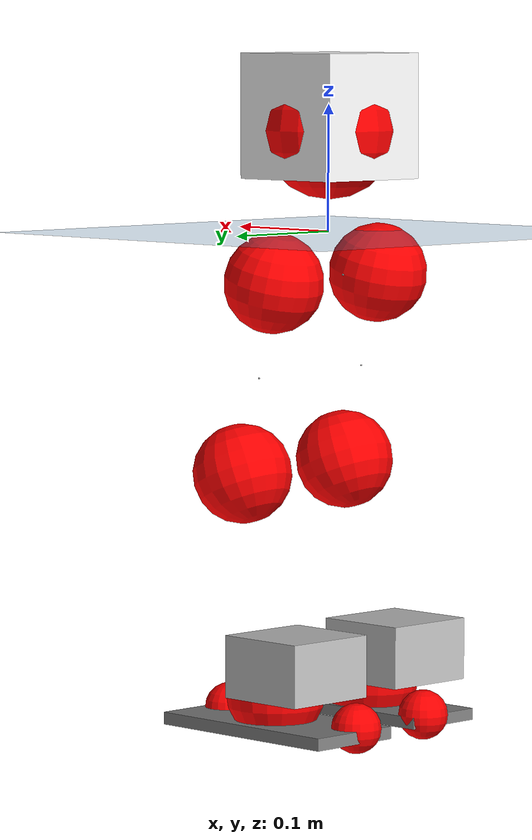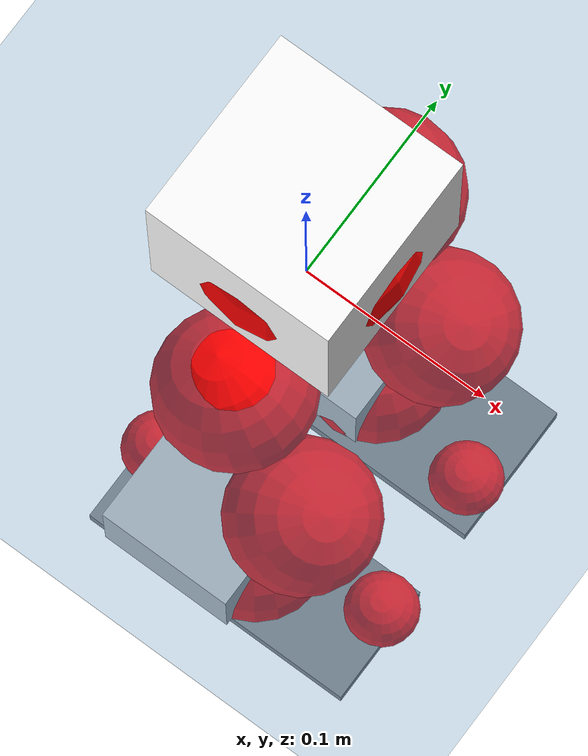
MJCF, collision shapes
<mujoco model="pi_12dof_release_v1">
  <compiler angle="radian" assetdir="assets" balanceinertia="true" inertiafromgeom="false"/>

  <option timestep="0.005" density="1.2" viscosity="2e-05"/>

  <size nkey="1"/>

  <visual>
    <quality shadowsize="8192"/>
    <map shadowclip="0.5"/>
  </visual>

  <default>
    <default class="/">
      <joint armature="0.01" damping="0.01" frictionloss="0.01"/>
      <geom contype="0" conaffinity="0" group="1" solref="-1000 -80"/>
      <site size="0.01 0.005 0.005" group="5"/>
      <general forcelimited="true" biastype="affine" gainprm="20" biasprm="0 -20 -0.5"/>
      <default class="foot">
        <geom size="0.0845 0.036 0.005" type="box" condim="6" group="4" priority="1" friction="0.9 0.2 0.2" solimp="0.015 1 0.005"/>
      </default>
      <default class="reward_collision_sphere">
        <geom group="5" rgba="1 0 0 1"/>
      </default>
    </default>
  </default>

  <asset>
    <texture type="skybox" colorspace="auto" name="//unnamed_texture_0" builtin="gradient" rgb1="0.95 0.95 0.95" rgb2="0.95 0.95 0.95" width="100" height="600"/>
    <texture type="2d" colorspace="auto" name="texplane" builtin="checker" rgb1="0.345 0.575 0.748" rgb2="0.345 0.575 0.748" markrgb="1 1 1" width="512" height="512"/>
    <material name="MatPlane" class="/" texture="texplane" texuniform="true" texrepeat="2 2" specular="0.9"/>
    <mesh name="baselink_1" class="/" file="baselink_1.STL"/>
    <mesh name="r_hip_pitch_link" class="/" file="r_hip_pitch_link.STL"/>
    <mesh name="r_hip_roll_link" class="/" file="r_hip_roll_link.STL"/>
    <mesh name="r_thigh_link" class="/" file="r_thigh_link.STL"/>
    <mesh name="r_calf_link" class="/" file="r_calf_link.STL"/>
    <mesh name="r_ankle_pitch_link" class="/" file="r_ankle_pitch_link.STL"/>
    <mesh name="r_ankle_roll_link" class="/" file="r_ankle_roll_link.STL"/>
    <mesh name="l_hip_pitch_link" class="/" file="l_hip_pitch_link.STL"/>
    <mesh name="l_hip_roll_link" class="/" file="l_hip_roll_link.STL"/>
    <mesh name="l_thigh_link" class="/" file="l_thigh_link.STL"/>
    <mesh name="l_calf_link" class="/" file="l_calf_link.STL"/>
    <mesh name="l_ankle_pitch_link" class="/" file="l_ankle_pitch_link.STL"/>
    <mesh name="l_ankle_roll_link" class="/" file="l_ankle_roll_link.STL"/>
  </asset>

  <worldbody>
    <geom name="floor" class="/" size="100 100 0.125" type="plane" group="0" material="MatPlane"/>
    <light name="toplight_shadow" class="/" pos="0 0 5" dir="0.0990148 0.0990148 -0.990148" type="directional" ambient="0.04 0.04 0.04" diffuse="0.55 0.55 0.55" specular="0.12 0.12 0.12"/>
    <light name="toplight_fill" class="/" pos="0 0 5" dir="0.0990148 0.0990148 -0.990148" type="directional" castshadow="false" ambient="0.04 0.04 0.04" diffuse="0.3 0.3 0.3" specular="0.08 0.08 0.08"/>
    <body name="trunk" pos="-0.000215598 -0.000849057 0.000507942" quat="1 -3.22883e-07 -1.76315e-06 8.1844e-06">
      <inertial pos="0.00139961 -0.00194172 0.0455202" quat="0.699255 0.0170716 0.0169085 0.714468" mass="2.06567" diaginertia="0.0128619 0.00252288 0.00769795"/>
      <joint name="//unnamed_joint_0" type="free"/>
      <geom name="//unnamed_geom_1" class="/" type="mesh" density="0" rgba="1 1 1 1" mesh="baselink_1"/>
      <geom name="//unnamed_geom_2" class="/" size="0.0493291 0.0493291 0.0493291" pos="0 0 0.0905118" type="box" rgba="1 1 1 1"/>
      <geom name="//unnamed_geom_3" class="reward_collision_sphere" size="0.054262" pos="0 0 0.0791978"/>
      <site name="imu" class="/" pos="0.00341244 -0.00235912 -0.00419183" size="0.00986582"/>
      <camera name="track" class="/" pos="0 -1.54779 0" quat="0.707107 0.707107 0 0" mode="trackcom"/>
      <camera name="ego_camera" class="/" pos="0.0790842 0 0.203652" quat="-0.5 -0.5 0.5 0.5"/>
      <body name="r_hip_pitch_link" pos="2.47431e-05 -0.0152066 -0.0352518" quat="0.99222 0.000256928 -0.124493 0.000329376">
        <inertial pos="0.000698059 -0.0435841 -0.000417292" quat="-0.0195792 0.707526 -0.0267583 0.705909" mass="0.353128" diaginertia="0.000141354 2.69852e-05 0.000155165"/>
        <joint name="r_hip_pitch_joint" class="/" pos="0 0 0" axis="0.0056801 -0.999979 -0.0031986" stiffness="0.000431998" range="-1.74458 1.2596" armature="0.00969644" damping="0.0144324" frictionloss="0.0101159"/>
        <geom name="//unnamed_geom_4" class="/" type="mesh" density="0" rgba="0.75294 0.75294 0.75294 1" mesh="r_hip_pitch_link"/>
        <geom name="//unnamed_geom_5" class="/" size="0.000493291 0.000493291 0.000493291" type="box" rgba="0.75294 0.75294 0.75294 1"/>
        <body name="r_hip_roll_link" pos="0.00120114 -0.0406821 -0.000165591" quat="1 -5.19766e-05 -0.000232906 0.00013939">
          <inertial pos="-0.00032499 -0.000499382 -0.0687603" quat="0.710157 -0.078927 -0.0864079 0.694249" mass="0.373617" diaginertia="0.000439027 7.7131e-05 0.000240881"/>
          <joint name="r_hip_roll_joint" class="/" pos="0 0 0" axis="-1 0.00045827 -0.000392242" stiffness="0.00224267" range="-0.11471 0.519836" armature="0.0097705" damping="0.00550469" frictionloss="0.00971985"/>
          <geom name="//unnamed_geom_6" class="/" type="mesh" density="0" rgba="0.75294 0.75294 0.75294 1" mesh="r_hip_roll_link"/>
          <geom name="//unnamed_geom_7" class="/" size="0.000493291 0.000493291 0.000493291" type="box" rgba="0.75294 0.75294 0.75294 1"/>
          <geom name="//unnamed_geom_8" class="reward_collision_sphere" size="0.0394633"/>
          <body name="r_thigh_link" pos="0.000537543 -0.00116099 -0.0782049" quat="1 3.5389e-05 -4.63824e-05 -0.000175259">
            <inertial pos="0.00082368 0.000669152 -0.0559362" quat="0.737703 0.675125 0.000108995 0.000920973" mass="0.107791" diaginertia="0.000161759 2.70102e-05 0.00010476"/>
            <joint name="r_thigh_joint" class="/" pos="0 0 0" axis="0.00105439 0.00170578 -0.999998" range="-0.308292 0.595422" armature="0.0103387" damping="0.0067465" frictionloss="0.00979103"/>
            <geom name="//unnamed_geom_9" class="/" type="mesh" density="0" rgba="0.75294 0.75294 0.75294 1" mesh="r_thigh_link"/>
            <geom name="//unnamed_geom_10" class="/" size="0.000493291 0.000493291 0.000493291" type="box" rgba="0.75294 0.75294 0.75294 1"/>
            <body name="r_calf_link" pos="-0.000236252 -0.000818699 -0.0794454" quat="0.947688 6.76854e-05 0.3192 -7.2215e-05">
              <inertial pos="0.000675967 -0.00124304 -0.079419" quat="0.999979 -0.00411639 -0.000112451 0.00497693" mass="0.770821" diaginertia="0.00466713 0.000948027 0.000329626"/>
              <joint name="r_calf_joint" class="/" pos="0 0 0" axis="0.00114103 -0.999999 5.4497e-05" range="-1.60332 0.634619" armature="0.01013" damping="0.00919026" frictionloss="0.00947944"/>
              <geom name="//unnamed_geom_11" class="/" type="mesh" density="0" rgba="0.75294 0.75294 0.75294 1" mesh="r_calf_link"/>
              <geom name="//unnamed_geom_12" class="/" size="0.000493291 0.000493291 0.000493291" type="box" rgba="0.75294 0.75294 0.75294 1"/>
              <geom name="//unnamed_geom_13" class="reward_collision_sphere" size="0.0394633"/>
              <body name="r_ankle_pitch_link" pos="0.00240718 0.00275686 -0.159257" quat="0.9801 -0.00024071 -0.198505 -0.00043905">
                <inertial pos="0.00571082 0.000543019 -0.00064682" quat="0.00341407 0.707287 -0.00152034 0.706916" mass="0.172392" diaginertia="0.000409502 6.25216e-05 0.000228417"/>
                <joint name="r_ankle_pitch_joint" class="/" pos="0 0 0" axis="-0.00910375 -0.999935 -0.00686064" stiffness="0.000375674" range="-1.3153 0.540295" armature="0.00990635" damping="0.00976177" frictionloss="0.0103682"/>
                <geom name="//unnamed_geom_14" class="/" type="mesh" density="0" rgba="0.75294 0.75294 0.75294 1" mesh="r_ankle_pitch_link"/>
                <geom name="//unnamed_geom_15" class="/" size="0.0384767 0.0394633 0.0246646" type="box" rgba="0.75294 0.75294 0.75294 1"/>
                <body name="r_ankle_roll_link" pos="0.0783578 0.00220402 -0.000311819" quat="1 -0.00014749 -0.000741283 0.000176924">
                  <inertial pos="-0.0262249 -5.79621e-05 -0.0161816" quat="0.560405 0.429816 0.434441 0.558986" mass="0.500561" diaginertia="0.00146789 0.000286258 0.000518592"/>
                  <joint name="r_ankle_roll_joint" class="/" pos="0 0 0" axis="-1 0.000359296 5.13162e-05" range="-0.19396 0.147196" armature="0.00979426" damping="0.0135784" frictionloss="0.0102217"/>
                  <geom name="//unnamed_geom_16" class="/" type="mesh" density="0" rgba="0.75294 0.75294 0.75294 1" mesh="r_ankle_roll_link"/>
                  <geom name="//unnamed_geom_17" class="/" type="mesh" rgba="0.75294 0.75294 0.75294 1" mesh="r_ankle_roll_link"/>
                  <geom name="right_foot" class="foot" size="0.0799992 0.0340522 0.00459185" pos="-0.0537773 0 -0.0497815"/>
                  <geom name="//unnamed_geom_19" class="reward_collision_sphere" size="0.0394633" pos="-0.0527228 0 -0.0226279"/>
                  <geom name="//unnamed_geom_20" class="reward_collision_sphere" size="0.0197316" pos="0.0158168 0.0154779 -0.0452559"/>
                  <geom name="//unnamed_geom_21" class="reward_collision_sphere" size="0.0197316" pos="-0.126535 0.0154779 -0.0452559"/>
                  <site name="right_foot" class="foot" pos="-0.0537773 0 -0.0497815" size="0.00986582"/>
                </body>
              </body>
            </body>
          </body>
        </body>
      </body>
      <body name="l_hip_pitch_link" pos="-0.000887633 0.0176634 -0.0366318" quat="0.99218 0.000455451 -0.124814 0.000137084">
        <inertial pos="0.000625293 0.0402417 -0.00114491" quat="-0.0365783 0.704686 0.0265076 0.70808" mass="0.365827" diaginertia="0.000165444 2.88303e-05 0.000184111"/>
        <joint name="l_hip_pitch_joint" class="/" pos="0 0 0" axis="0.0014927 0.999998 -0.00139855" stiffness="0.000834633" range="-1.24565 1.75371" armature="0.00978294" damping="0" frictionloss="0.00993579"/>
        <geom name="//unnamed_geom_22" class="/" type="mesh" density="0" rgba="0.75294 0.75294 0.75294 1" mesh="l_hip_pitch_link"/>
        <geom name="//unnamed_geom_23" class="/" size="0.000493291 0.000493291 0.000493291" type="box" rgba="0.75294 0.75294 0.75294 1"/>
        <body name="l_hip_roll_link" pos="0.000491894 0.0434305 -0.00195307" quat="1 -8.18663e-06 -2.4476e-05 -0.000112374">
          <inertial pos="-0.000928336 -0.000564445 -0.0711902" quat="0.698422 -0.0740911 -0.0770426 0.70766" mass="0.379157" diaginertia="0.000432158 7.51205e-05 0.000233691"/>
          <joint name="l_hip_roll_joint" class="/" pos="0 0 0" axis="-0.999998 -0.00191386 -5.8969e-05" range="-0.54048 0.111661" armature="0.0104053" damping="0.00646843" frictionloss="0.00936218"/>
          <geom name="//unnamed_geom_24" class="/" type="mesh" density="0" rgba="0.75294 0.75294 0.75294 1" mesh="l_hip_roll_link"/>
          <geom name="//unnamed_geom_25" class="/" size="0.000493291 0.000493291 0.000493291" type="box" rgba="0.75294 0.75294 0.75294 1"/>
          <geom name="//unnamed_geom_26" class="reward_collision_sphere" size="0.0394633"/>
          <body name="l_thigh_link" pos="0.000100101 -0.00265749 -0.0781723" quat="1 -0.000160651 8.28783e-06 0.000156376">
            <inertial pos="0.000469304 -0.00151696 -0.0532312" quat="0.675691 0.737185 0.000367502 -0.000237263" mass="0.107557" diaginertia="0.000165422 2.61392e-05 0.00010678"/>
            <joint name="l_thigh_joint" class="/" pos="0 0 0" axis="4.48909e-05 1.44127e-05 -1" range="-0.592089 0.29715" armature="0.00995286" damping="0.00212053" frictionloss="0.00991789"/>
            <geom name="//unnamed_geom_27" class="/" type="mesh" density="0" rgba="0.75294 0.75294 0.75294 1" mesh="l_thigh_link"/>
            <geom name="//unnamed_geom_28" class="/" size="0.000493291 0.000493291 0.000493291" type="box" rgba="0.75294 0.75294 0.75294 1"/>
            <body name="l_calf_link" pos="-0.000842631 8.55324e-05 -0.0786789" quat="0.94783 -0.000270872 0.318777 0.000219645">
              <inertial pos="-0.000461883 0.00355581 -0.0798666" quat="0.999968 0.00431709 0.000739009 0.00669879" mass="0.776821" diaginertia="0.00460465 0.00095364 0.000329361"/>
              <joint name="l_calf_joint" class="/" pos="0 0 0" axis="0.000239317 1 0.000452683" range="-0.656311 1.67273" armature="0.00943" damping="0.00476558" frictionloss="0.00937577"/>
              <geom name="//unnamed_geom_29" class="/" type="mesh" density="0" rgba="0.75294 0.75294 0.75294 1" mesh="l_calf_link"/>
              <geom name="//unnamed_geom_30" class="/" size="0.000493291 0.000493291 0.000493291" type="box" rgba="0.75294 0.75294 0.75294 1"/>
              <geom name="//unnamed_geom_31" class="reward_collision_sphere" size="0.0394633"/>
              <body name="l_ankle_pitch_link" pos="-0.000215226 0.0020213 -0.158893" quat="0.980044 -0.000304914 -0.198781 -0.00087333">
                <inertial pos="0.00528709 -0.0023108 -0.000658978" quat="-0.00136463 0.706981 0.00129365 0.70723" mass="0.169637" diaginertia="0.000405019 6.16254e-05 0.000222807"/>
                <joint name="l_ankle_pitch_joint" class="/" pos="0 0 0" axis="-0.00222814 0.999996 0.00168083" stiffness="0.00231668" range="-0.530084 1.30497" armature="0.0101281" damping="0.00511197" frictionloss="0.00983936"/>
                <geom name="//unnamed_geom_32" class="/" type="mesh" density="0" rgba="0.75294 0.75294 0.75294 1" mesh="l_ankle_pitch_link"/>
                <geom name="//unnamed_geom_33" class="/" size="0.0384767 0.0394633 0.0246646" type="box" rgba="0.75294 0.75294 0.75294 1"/>
                <body name="l_ankle_roll_link" pos="0.0769909 -0.00139996 0.000352592" quat="1 9.45248e-05 0.000166287 -0.000422777">
                  <inertial pos="-0.0234551 -0.000199468 -0.0154331" quat="0.556871 0.429821 0.433709 0.563067" mass="0.494931" diaginertia="0.00150464 0.000288373 0.000522863"/>
                  <joint name="l_ankle_roll_joint" class="/" pos="0 0 0" axis="-0.999928 -0.0101076 0.00641953" range="-0.109238 0.140047" armature="0.010783" damping="0.0188785" frictionloss="0.00917379"/>
                  <geom name="//unnamed_geom_34" class="/" type="mesh" density="0" rgba="0.75294 0.75294 0.75294 1" mesh="l_ankle_roll_link"/>
                  <geom name="//unnamed_geom_35" class="/" type="mesh" rgba="0.75294 0.75294 0.75294 1" mesh="l_ankle_roll_link"/>
                  <geom name="left_foot" class="foot" size="0.0866434 0.0400684 0.00490665" pos="-0.0537773 0 -0.0497815"/>
                  <geom name="//unnamed_geom_37" class="reward_collision_sphere" size="0.0394633" pos="-0.0527228 0 -0.0226279"/>
                  <geom name="//unnamed_geom_38" class="reward_collision_sphere" size="0.0197316" pos="0.0158168 -0.0154779 -0.0452559"/>
                  <geom name="//unnamed_geom_39" class="reward_collision_sphere" size="0.0197316" pos="-0.126535 -0.0154779 -0.0452559"/>
                  <site name="left_foot" class="foot" pos="-0.0537773 0 -0.0497815" size="0.00986582"/>
                </body>
              </body>
            </body>
          </body>
        </body>
      </body>
    </body>
  </worldbody>

  <contact>
    <pair class="/" geom1="floor" geom2="right_foot" name="//unnamed_contact_1"/>
    <pair class="/" geom1="floor" geom2="left_foot" name="//unnamed_contact_0"/>
  </contact>

  <actuator>
    <general name="r_hip_pitch_joint" class="/" joint="r_hip_pitch_joint" forcerange="-21.2354 21.2354" gainprm="19.9583" biasprm="0 -19.9583 -0.490336"/>
    <general name="r_hip_roll_joint" class="/" joint="r_hip_roll_joint" forcerange="-20.6376 20.6376" gainprm="19.9583" biasprm="0 -19.9583 -0.490336"/>
    <general name="r_thigh_joint" class="/" joint="r_thigh_joint" forcerange="-20.9512 20.9512" gainprm="19.9583" biasprm="0 -19.9583 -0.490336"/>
    <general name="r_calf_joint" class="/" joint="r_calf_joint" forcerange="-19.444 19.444" gainprm="19.9583" biasprm="0 -19.9583 -0.490336"/>
    <general name="r_ankle_pitch_joint" class="/" joint="r_ankle_pitch_joint" forcerange="-22.2059 22.2059" gainprm="19.9583" biasprm="0 -19.9583 -0.490336"/>
    <general name="r_ankle_roll_joint" class="/" joint="r_ankle_roll_joint" forcerange="-22.2203 22.2203" gainprm="19.9583" biasprm="0 -19.9583 -0.490336"/>
    <general name="l_hip_pitch_joint" class="/" joint="l_hip_pitch_joint" forcerange="-22.5681 22.5681" gainprm="19.9583" biasprm="0 -19.9583 -0.490336"/>
    <general name="l_hip_roll_joint" class="/" joint="l_hip_roll_joint" forcerange="-20.6093 20.6093" gainprm="19.9583" biasprm="0 -19.9583 -0.490336"/>
    <general name="l_thigh_joint" class="/" joint="l_thigh_joint" forcerange="-21.4141 21.4141" gainprm="19.9583" biasprm="0 -19.9583 -0.490336"/>
    <general name="l_calf_joint" class="/" joint="l_calf_joint" forcerange="-22.2399 22.2399" gainprm="19.9583" biasprm="0 -19.9583 -0.490336"/>
    <general name="l_ankle_pitch_joint" class="/" joint="l_ankle_pitch_joint" forcerange="-22.2265 22.2265" gainprm="19.9583" biasprm="0 -19.9583 -0.490336"/>
    <general name="l_ankle_roll_joint" class="/" joint="l_ankle_roll_joint" forcerange="-20.7588 20.7588" gainprm="19.9583" biasprm="0 -19.9583 -0.490336"/>
  </actuator>

  <sensor>
    <gyro site="imu" name="imu_angular_velocity"/>
    <velocimeter site="imu" name="imu_linear_velocity"/>
    <framelinvel objtype="site" objname="left_foot" name="left_foot_global_linear_velocity"/>
    <framelinvel objtype="site" objname="right_foot" name="right_foot_global_linear_velocity"/>
  </sensor>

  <keyframe>
    <key name="home" qpos="0 0 0.291 1 0 0 0 0.4 0 0 -0.8 0.4 0 -0.4 0 0 0.8 -0.4 0"/>
  </keyframe>
</mujoco>
